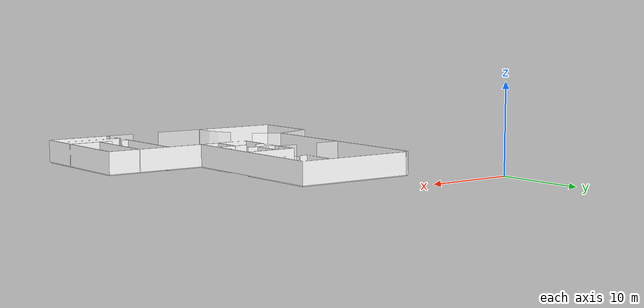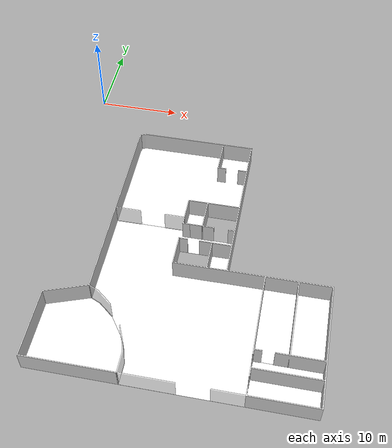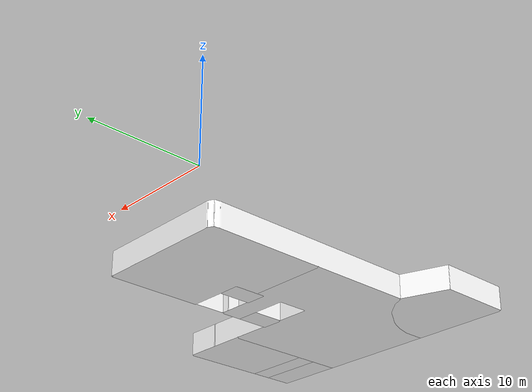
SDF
<?xml version='1.0' encoding='utf-8'?>
<sdf version="1.7">
  <model name="hotel_L1">
    <static>true</static>
    <link name="floor_1">
      <visual name="visual">
        <geometry>
          <mesh>
            <uri>model://hotel_L1/meshes/floor_1.obj</uri>
          </mesh>
        </geometry>
        <material>
          <diffuse>1.0 1.0 1.0</diffuse>
          <specular>0.1 0.1 0.1</specular>
          <pbr>
            <metal>
              <metalness>0.0</metalness>
              <albedo_map>model://hotel_L1/meshes/concrete2.png</albedo_map>
            </metal>
          </pbr>
          <script>
            <uri>model://hotel_L1/meshes/</uri>
            <name>floor_1_Diffuse</name>
          </script>
        </material>
      </visual>
      <collision name="collision">
        <geometry>
          <mesh>
            <uri>model://hotel_L1/meshes/floor_1.obj</uri>
          </mesh>
        </geometry>
        <surface>
          <contact>
            <collide_bitmask>0x01</collide_bitmask>
          </contact>
        </surface>
      </collision>
    </link>
    <link name="floor_2">
      <visual name="visual">
        <geometry>
          <mesh>
            <uri>model://hotel_L1/meshes/floor_2.obj</uri>
          </mesh>
        </geometry>
        <material>
          <diffuse>1.0 1.0 1.0</diffuse>
          <specular>0.1 0.1 0.1</specular>
          <pbr>
            <metal>
              <metalness>0.0</metalness>
              <albedo_map>model://hotel_L1/meshes/red_tiles.png</albedo_map>
            </metal>
          </pbr>
          <script>
            <uri>model://hotel_L1/meshes/</uri>
            <name>floor_2_Diffuse</name>
          </script>
        </material>
      </visual>
      <collision name="collision">
        <geometry>
          <mesh>
            <uri>model://hotel_L1/meshes/floor_2.obj</uri>
          </mesh>
        </geometry>
        <surface>
          <contact>
            <collide_bitmask>0x01</collide_bitmask>
          </contact>
        </surface>
      </collision>
    </link>
    <link name="floor_3">
      <visual name="visual">
        <geometry>
          <mesh>
            <uri>model://hotel_L1/meshes/floor_3.obj</uri>
          </mesh>
        </geometry>
        <material>
          <diffuse>1.0 1.0 1.0</diffuse>
          <specular>0.1 0.1 0.1</specular>
          <pbr>
            <metal>
              <metalness>0.0</metalness>
              <albedo_map>model://hotel_L1/meshes/blue_linoleum.png</albedo_map>
            </metal>
          </pbr>
          <script>
            <uri>model://hotel_L1/meshes/</uri>
            <name>floor_3_Diffuse</name>
          </script>
        </material>
      </visual>
      <collision name="collision">
        <geometry>
          <mesh>
            <uri>model://hotel_L1/meshes/floor_3.obj</uri>
          </mesh>
        </geometry>
        <surface>
          <contact>
            <collide_bitmask>0x01</collide_bitmask>
          </contact>
        </surface>
      </collision>
    </link>
    <link name="floor_4">
      <visual name="visual">
        <geometry>
          <mesh>
            <uri>model://hotel_L1/meshes/floor_4.obj</uri>
          </mesh>
        </geometry>
        <material>
          <diffuse>1.0 1.0 1.0</diffuse>
          <specular>0.1 0.1 0.1</specular>
          <pbr>
            <metal>
              <metalness>0.0</metalness>
              <albedo_map>model://hotel_L1/meshes/blue_linoleum.png</albedo_map>
            </metal>
          </pbr>
          <script>
            <uri>model://hotel_L1/meshes/</uri>
            <name>floor_4_Diffuse</name>
          </script>
        </material>
      </visual>
      <collision name="collision">
        <geometry>
          <mesh>
            <uri>model://hotel_L1/meshes/floor_4.obj</uri>
          </mesh>
        </geometry>
        <surface>
          <contact>
            <collide_bitmask>0x01</collide_bitmask>
          </contact>
        </surface>
      </collision>
    </link>
    <link name="floor_5">
      <visual name="visual">
        <geometry>
          <mesh>
            <uri>model://hotel_L1/meshes/floor_5.obj</uri>
          </mesh>
        </geometry>
        <material>
          <diffuse>1.0 1.0 1.0</diffuse>
          <specular>0.1 0.1 0.1</specular>
          <pbr>
            <metal>
              <metalness>0.0</metalness>
              <albedo_map>model://hotel_L1/meshes/blue_linoleum.png</albedo_map>
            </metal>
          </pbr>
          <script>
            <uri>model://hotel_L1/meshes/</uri>
            <name>floor_5_Diffuse</name>
          </script>
        </material>
      </visual>
      <collision name="collision">
        <geometry>
          <mesh>
            <uri>model://hotel_L1/meshes/floor_5.obj</uri>
          </mesh>
        </geometry>
        <surface>
          <contact>
            <collide_bitmask>0x01</collide_bitmask>
          </contact>
        </surface>
      </collision>
    </link>
    <link name="floor_6">
      <visual name="visual">
        <geometry>
          <mesh>
            <uri>model://hotel_L1/meshes/floor_6.obj</uri>
          </mesh>
        </geometry>
        <material>
          <diffuse>1.0 1.0 1.0</diffuse>
          <specular>0.1 0.1 0.1</specular>
          <pbr>
            <metal>
              <metalness>0.0</metalness>
              <albedo_map>model://hotel_L1/meshes/concrete4.png</albedo_map>
            </metal>
          </pbr>
          <script>
            <uri>model://hotel_L1/meshes/</uri>
            <name>floor_6_Diffuse</name>
          </script>
        </material>
      </visual>
      <collision name="collision">
        <geometry>
          <mesh>
            <uri>model://hotel_L1/meshes/floor_6.obj</uri>
          </mesh>
        </geometry>
        <surface>
          <contact>
            <collide_bitmask>0x01</collide_bitmask>
          </contact>
        </surface>
      </collision>
    </link>
    <link name="floor_7">
      <visual name="visual">
        <geometry>
          <mesh>
            <uri>model://hotel_L1/meshes/floor_7.obj</uri>
          </mesh>
        </geometry>
        <material>
          <diffuse>1.0 1.0 1.0</diffuse>
          <specular>0.1 0.1 0.1</specular>
          <pbr>
            <metal>
              <metalness>0.0</metalness>
              <albedo_map>model://hotel_L1/meshes/concrete4.png</albedo_map>
            </metal>
          </pbr>
          <script>
            <uri>model://hotel_L1/meshes/</uri>
            <name>floor_7_Diffuse</name>
          </script>
        </material>
      </visual>
      <collision name="collision">
        <geometry>
          <mesh>
            <uri>model://hotel_L1/meshes/floor_7.obj</uri>
          </mesh>
        </geometry>
        <surface>
          <contact>
            <collide_bitmask>0x01</collide_bitmask>
          </contact>
        </surface>
      </collision>
    </link>
    <link name="floor_8">
      <visual name="visual">
        <geometry>
          <mesh>
            <uri>model://hotel_L1/meshes/floor_8.obj</uri>
          </mesh>
        </geometry>
        <material>
          <diffuse>1.0 1.0 1.0</diffuse>
          <specular>0.1 0.1 0.1</specular>
          <pbr>
            <metal>
              <metalness>0.0</metalness>
              <albedo_map>model://hotel_L1/meshes/blue_linoleum.png</albedo_map>
            </metal>
          </pbr>
          <script>
            <uri>model://hotel_L1/meshes/</uri>
            <name>floor_8_Diffuse</name>
          </script>
        </material>
      </visual>
      <collision name="collision">
        <geometry>
          <mesh>
            <uri>model://hotel_L1/meshes/floor_8.obj</uri>
          </mesh>
        </geometry>
        <surface>
          <contact>
            <collide_bitmask>0x01</collide_bitmask>
          </contact>
        </surface>
      </collision>
    </link>
    <link name="wall_1">
      <visual name="wall_1">
        <geometry>
          <mesh>
            <uri>model://hotel_L1/meshes/wall_1.obj</uri>
          </mesh>
        </geometry>
        <transparency>0.0</transparency>
        <material>
          <diffuse>1.0 1.0 1.0</diffuse>
          <specular>0.1 0.1 0.1</specular>
          <pbr>
            <metal>
              <metalness>0.0</metalness>
              <albedo_map>model://hotel_L1/meshes/white_brick.png</albedo_map>
            </metal>
          </pbr>
          <script>
            <uri>model://hotel_L1/meshes/</uri>
            <name>wall_1_Diffuse</name>
          </script>
        </material>
      </visual>
      <collision name="collision">
        <geometry>
          <mesh>
            <uri>model://hotel_L1/meshes/wall_1.obj</uri>
          </mesh>
        </geometry>
        <surface>
          <contact>
            <collide_bitmask>0x01</collide_bitmask>
          </contact>
        </surface>
      </collision>
      <pose>2.265116752338462 -40.086533255047804 0 0 0 0</pose>
    </link>
    <link name="wall_2">
      <visual name="wall_2">
        <geometry>
          <mesh>
            <uri>model://hotel_L1/meshes/wall_2.obj</uri>
          </mesh>
        </geometry>
        <transparency>0.4</transparency>
        <material>
          <diffuse>1.0 1.0 1.0</diffuse>
          <specular>0.1 0.1 0.1</specular>
          <pbr>
            <metal>
              <metalness>0.0</metalness>
              <albedo_map>model://hotel_L1/meshes/white_brick.png</albedo_map>
            </metal>
          </pbr>
          <script>
            <uri>model://hotel_L1/meshes/</uri>
            <name>wall_2_Diffuse</name>
          </script>
        </material>
      </visual>
      <collision name="collision">
        <geometry>
          <mesh>
            <uri>model://hotel_L1/meshes/wall_2.obj</uri>
          </mesh>
        </geometry>
        <surface>
          <contact>
            <collide_bitmask>0x01</collide_bitmask>
          </contact>
        </surface>
      </collision>
      <pose>6.992437290015334 -40.086533255047804 0 0 0 0</pose>
    </link>
    <link name="wall_3">
      <visual name="wall_3">
        <geometry>
          <mesh>
            <uri>model://hotel_L1/meshes/wall_3.obj</uri>
          </mesh>
        </geometry>
        <transparency>0.0</transparency>
        <material>
          <diffuse>1.0 1.0 1.0</diffuse>
          <specular>0.1 0.1 0.1</specular>
          <pbr>
            <metal>
              <metalness>0.0</metalness>
              <albedo_map>model://hotel_L1/meshes/white_beige_tiles.png</albedo_map>
            </metal>
          </pbr>
          <script>
            <uri>model://hotel_L1/meshes/</uri>
            <name>wall_3_Diffuse</name>
          </script>
        </material>
      </visual>
      <collision name="collision">
        <geometry>
          <mesh>
            <uri>model://hotel_L1/meshes/wall_3.obj</uri>
          </mesh>
        </geometry>
        <surface>
          <contact>
            <collide_bitmask>0x01</collide_bitmask>
          </contact>
        </surface>
      </collision>
      <pose>15.199372084678874 -26.05711093714324 0 0 0 0</pose>
    </link>
    <link name="wall_4">
      <visual name="wall_4">
        <geometry>
          <mesh>
            <uri>model://hotel_L1/meshes/wall_4.obj</uri>
          </mesh>
        </geometry>
        <transparency>0.4</transparency>
        <material>
          <diffuse>1.0 1.0 1.0</diffuse>
          <specular>0.1 0.1 0.1</specular>
          <pbr>
            <metal>
              <metalness>0.0</metalness>
              <albedo_map>model://hotel_L1/meshes/blue_linoleum.png</albedo_map>
            </metal>
          </pbr>
          <script>
            <uri>model://hotel_L1/meshes/</uri>
            <name>wall_4_Diffuse</name>
          </script>
        </material>
      </visual>
      <collision name="collision">
        <geometry>
          <mesh>
            <uri>model://hotel_L1/meshes/wall_4.obj</uri>
          </mesh>
        </geometry>
        <surface>
          <contact>
            <collide_bitmask>0x01</collide_bitmask>
          </contact>
        </surface>
      </collision>
      <pose>6.976464887597373 -40.086533255047804 0 0 0 0</pose>
    </link>
    <link name="wall_5">
      <visual name="wall_5">
        <geometry>
          <mesh>
            <uri>model://hotel_L1/meshes/wall_5.obj</uri>
          </mesh>
        </geometry>
        <transparency>0.0</transparency>
        <material>
          <diffuse>1.0 1.0 1.0</diffuse>
          <specular>0.1 0.1 0.1</specular>
          <pbr>
            <metal>
              <metalness>0.0</metalness>
              <albedo_map>model://hotel_L1/meshes/black_concrete.png</albedo_map>
            </metal>
          </pbr>
          <script>
            <uri>model://hotel_L1/meshes/</uri>
            <name>wall_5_Diffuse</name>
          </script>
        </material>
      </visual>
      <collision name="collision">
        <geometry>
          <mesh>
            <uri>model://hotel_L1/meshes/wall_5.obj</uri>
          </mesh>
        </geometry>
        <surface>
          <contact>
            <collide_bitmask>0x01</collide_bitmask>
          </contact>
        </surface>
      </collision>
      <pose>16.069085363864705 -20.45643246240664 0 0 0 0</pose>
    </link>
    <link name="wall_6">
      <visual name="wall_6">
        <geometry>
          <mesh>
            <uri>model://hotel_L1/meshes/wall_6.obj</uri>
          </mesh>
        </geometry>
        <transparency>0.0</transparency>
        <material>
          <diffuse>1.0 1.0 1.0</diffuse>
          <specular>0.1 0.1 0.1</specular>
          <pbr>
            <metal>
              <metalness>0.0</metalness>
              <albedo_map>model://hotel_L1/meshes/default.png</albedo_map>
            </metal>
          </pbr>
          <script>
            <uri>model://hotel_L1/meshes/</uri>
            <name>wall_6_Diffuse</name>
          </script>
        </material>
      </visual>
      <collision name="collision">
        <geometry>
          <mesh>
            <uri>model://hotel_L1/meshes/wall_6.obj</uri>
          </mesh>
        </geometry>
        <surface>
          <contact>
            <collide_bitmask>0x01</collide_bitmask>
          </contact>
        </surface>
      </collision>
      <pose>21.24366865642432 -26.02938480608019 0 0 0 0</pose>
    </link>
    <link name="wall_7">
      <visual name="wall_7">
        <geometry>
          <mesh>
            <uri>model://hotel_L1/meshes/wall_7.obj</uri>
          </mesh>
        </geometry>
        <transparency>0.0</transparency>
        <material>
          <diffuse>1.0 1.0 1.0</diffuse>
          <specular>0.1 0.1 0.1</specular>
          <pbr>
            <metal>
              <metalness>0.0</metalness>
              <albedo_map>model://hotel_L1/meshes/wall_white.png</albedo_map>
            </metal>
          </pbr>
          <script>
            <uri>model://hotel_L1/meshes/</uri>
            <name>wall_7_Diffuse</name>
          </script>
        </material>
      </visual>
      <collision name="collision">
        <geometry>
          <mesh>
            <uri>model://hotel_L1/meshes/wall_7.obj</uri>
          </mesh>
        </geometry>
        <surface>
          <contact>
            <collide_bitmask>0x01</collide_bitmask>
          </contact>
        </surface>
      </collision>
      <pose>25.4580405780083 -34.98492513944615 0 0 0 0</pose>
    </link>
    <link name="wall_8">
      <visual name="wall_8">
        <geometry>
          <mesh>
            <uri>model://hotel_L1/meshes/wall_8.obj</uri>
          </mesh>
        </geometry>
        <transparency>0.0</transparency>
        <material>
          <diffuse>1.0 1.0 1.0</diffuse>
          <specular>0.1 0.1 0.1</specular>
          <pbr>
            <metal>
              <metalness>0.0</metalness>
              <albedo_map>model://hotel_L1/meshes/concrete4.png</albedo_map>
            </metal>
          </pbr>
          <script>
            <uri>model://hotel_L1/meshes/</uri>
            <name>wall_8_Diffuse</name>
          </script>
        </material>
      </visual>
      <collision name="collision">
        <geometry>
          <mesh>
            <uri>model://hotel_L1/meshes/wall_8.obj</uri>
          </mesh>
        </geometry>
        <surface>
          <contact>
            <collide_bitmask>0x01</collide_bitmask>
          </contact>
        </surface>
      </collision>
      <pose>29.14561600939428 -34.98492513944615 0 0 0 0</pose>
    </link>
  </model>
</sdf>
